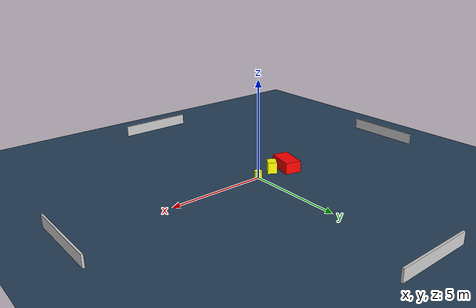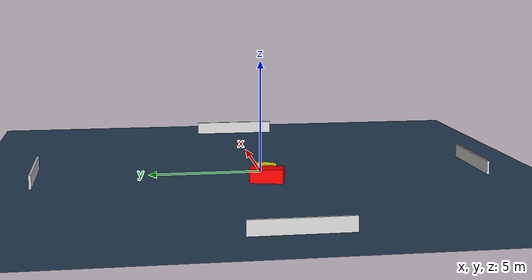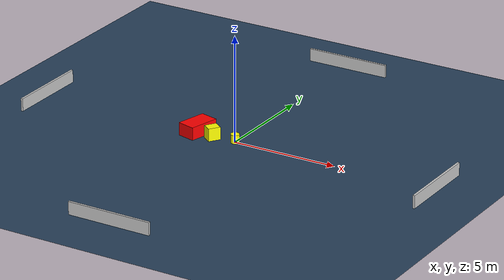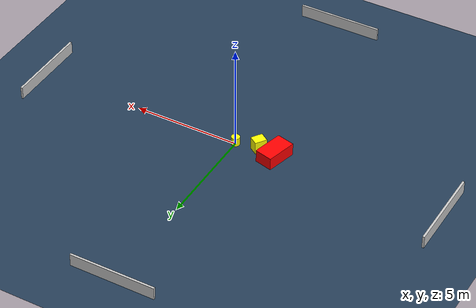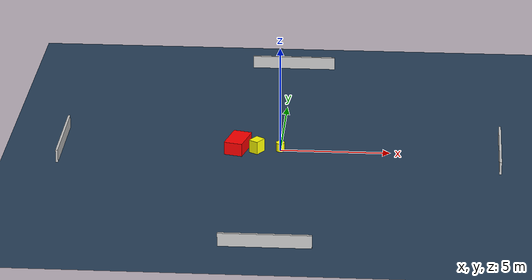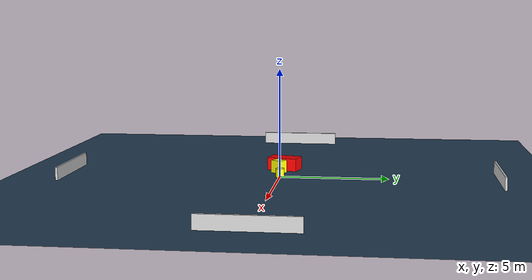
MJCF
<?xml version="1.0" ?>
<mujoco model="generated_environment">
  <option timestep="0.01" integrator="RK4" cone="elliptic"/>
  <default>
    <geom density="1"/>
  </default>
  <asset>
    <texture builtin="gradient" height="3072" name="skybox" rgb1="0.3 0.5 0.7" rgb2="0 0 0" type="skybox" width="512"/>
    <texture builtin="checker" height="300" name="groundplane" rgb1="0.2 0.3 0.4" rgb2="0.1 0.2 0.3" type="2d" width="300"/>
    <material name="groundplane" reflectance="0.2" texrepeat="5 5" texture="groundplane"/>
  </asset>
  <worldbody>
    <light dir="0 0 -1" directional="true" pos="0 0 1.5"/>
    <geom condim="3" friction="0.5 0.005 0.001" material="groundplane" name="floor" pos="0 0 0" size="0 0 0.05" type="plane"/>
    <body name="walls">
      <geom name="wall_1" condim="4" pos="-10.0 0.0 0.3" rgba="0.800000011920929 0.800000011920929 0.800000011920929 1.0" size="0.05 2.0 0.3" type="box"/>
      <geom name="wall_2" condim="4" pos="10.0 0.0 0.3" rgba="0.800000011920929 0.800000011920929 0.800000011920929 1.0" size="0.05 2.0 0.3" type="box"/>
      <geom name="wall_3" condim="4" pos="0.0 -10.0 0.3" rgba="0.800000011920929 0.800000011920929 0.800000011920929 1.0" size="2.0 0.05 0.3" type="box"/>
      <geom name="wall_4" condim="4" pos="0.0 10.0 0.3" rgba="0.800000011920929 0.800000011920929 0.800000011920929 1.0" size="2.0 0.05 0.3" type="box"/>
    </body>
    <body name="robot">
      <joint name="joint_x" type="slide" pos="0 0 0" axis="1 0 0"/>
      <joint name="joint_y" type="slide" pos="0 0 0" axis="0 1 0"/>
      <geom name="robot" type="cylinder" pos="0.0 0.0 0.2" size="0.2 0.2 0.0" mass="5.0" friction="1.0 0.005 0.0001" condim="4" rgba="1.0 1.0 0.0 1.0"/>
    </body>
    <body name="obstacle_1_movable">
      <geom name="obstacle_1_movable" condim="4" pos="-1.0630315494330718 -0.17503232996464588 0.3" euler="0 0 145.81102775292237" friction="0.0 0.005 0.001" rgba="1.0 1.0 0.0 1.0" size="0.23395750776673938 0.283826318464603 0.3" type="box" mass="0.1"/>
      <joint type="free"/>
    </body>
    <body name="obstacle_2_static">
      <geom name="obstacle_2_static" condim="4" pos="-1.9442785419297401 -0.0014405300075761047 0.3" euler="0 0 75.87153725709462" friction="0.0 0.005 0.001" rgba="1.0 0.0 0.0 1.0" size="0.7200311615809014 0.4275666778961805 0.3" type="box"/>
    </body>
  </worldbody>
  <actuator>
    <motor name="actuator_x" joint="joint_x" gear="1" ctrlrange="-1 1"/>
    <motor name="actuator_y" joint="joint_y" gear="1" ctrlrange="-1 1"/>
  </actuator>
</mujoco>
